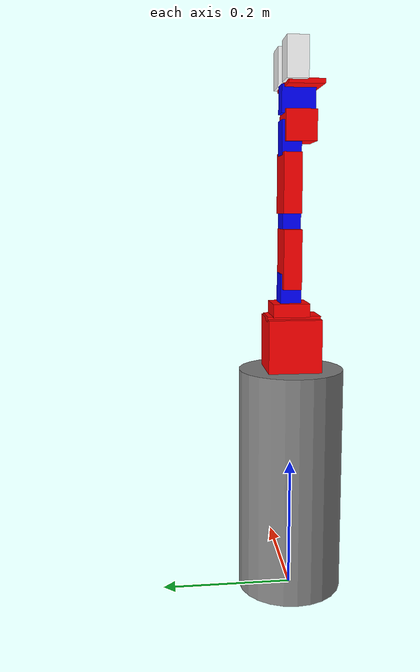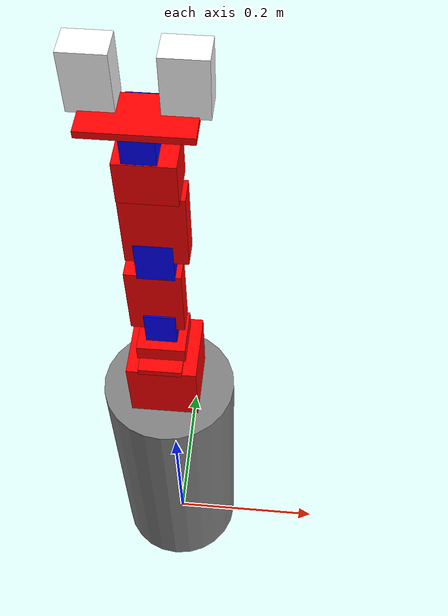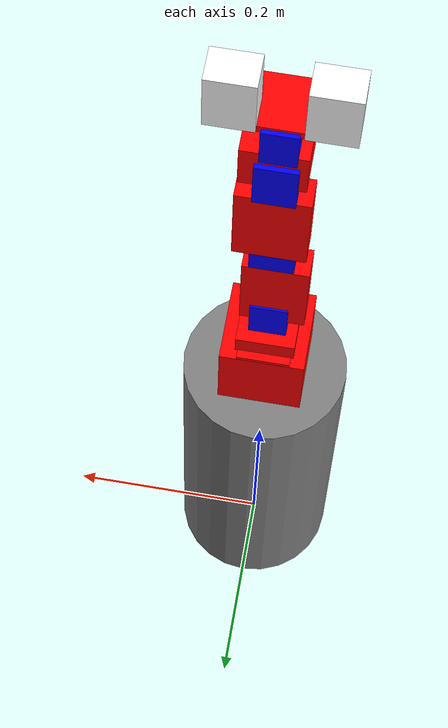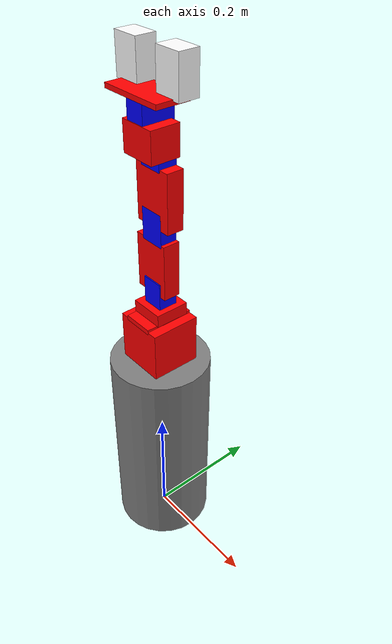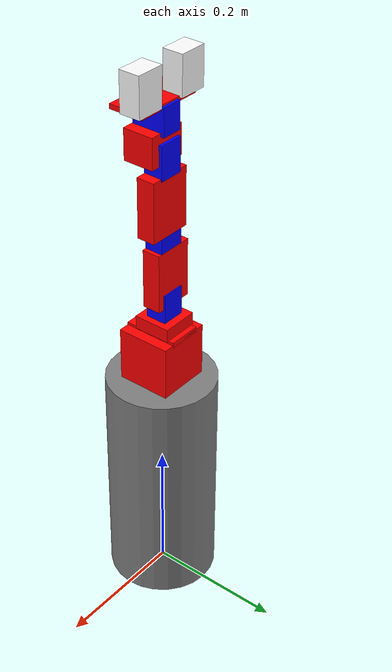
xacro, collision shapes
<?xml version="1.0"?>
<robot xmlns:xacro="http://www.ros.org/wiki/xacro" name="armando">

  <!-- Argomenti che verranno passati dal launch file -->
  <xacro:arg name="namespace" default=""/>
  <xacro:arg name="yaml_file" default=""/>

  <!-- Proprietà locali -->
  <xacro:property name="prefix" value="arm_"/>
  <xacro:property name="namespace_value" value="$(arg namespace)"/>
  <xacro:property name="yaml_path" value="$(arg yaml_file)"/>

  <!-- ... resto del file rimane uguale ... -->

  <!-- ... resto del tuo codice ... -->
  <material name="red">
    <color rgba="1 0 0 1"/>
  </material>

  <material name="blue">
    <color rgba="0 0 1 1"/>
  </material>

  <material name="green">
    <color rgba="0 1 0 1"/>
  </material>

  <!-- MATERIALS -->
  <material name="red_base"><color rgba="0.8 0.0 0.0 1.0"/></material>
  <material name="black"><color rgba="0.15 0.15 0.15 1.0"/></material>
  <material name="grey"><color rgba="0.5 0.5 0.5 1.0"/></material>

  <!-- PROPERTIES -->
  <xacro:property name="M_PI_2" value="1.570796327" />

  <xacro:property name="base_length" value="0.35" />
  <xacro:property name="base_width" value="0.25" />
  <xacro:property name="base_height" value="0.08" />
  <xacro:property name="base_mass" value="5.0" />

  <xacro:property name="wheel_radius" value="0.03" />
  <xacro:property name="wheel_width" value="0.025" />
  <xacro:property name="wheel_mass" value="0.3" />
  <xacro:property name="wheel_separation" value="0.24" />

  <xacro:property name="caster_radius" value="0.015" />
  <xacro:property name="caster_mass" value="0.05" />

  <xacro:property name="ground_clearance" value="0.005" />
  <xacro:property name="wheel_mount_z" value="${-base_height/2}" />
  <xacro:property name="base_elevation" value="${wheel_radius - wheel_mount_z + ground_clearance}" />

  <link name="${prefix}base_link">
    <visual>
      <geometry>
        <mesh filename="file://$(find escape_room)/meshes/armando/base_link.stl" scale="0.001 0.001 0.001"/>
      </geometry>
      <origin rpy="0 0 0" xyz="0 0 0.03"/>
      <material name="red"/>
    </visual>
    <collision>
      <geometry>
        <box size = "0.08 0.08 0.1"/>
      </geometry>
      <origin rpy="0 0 0" xyz="0 0 0.03"/>
    </collision>
    <inertial>
      <mass value="0.5"/>
      <inertia ixx="0.001" ixy="0.0" ixz="0.0" iyy="0.001" iyz="0.0" izz="0.001"/>
    </inertial>
  </link>

  <joint name="${prefix}base_1_2" type="fixed">
    <parent link="${prefix}base_link"/>
    <child link="${prefix}base_turn"/>
    <origin xyz="-0.0011 -0.011 0.08"/>
  </joint>

  <link name="${prefix}base_turn">
    <visual>
      <geometry>
        <mesh filename="file://$(find escape_room)/meshes/armando/base_turn.stl" scale="0.001 0.001 0.001"/>
      </geometry>
      <origin rpy="0 0 0" xyz="0 0 0"/>
      <material name="red"/>
    </visual>
    <collision>
      <geometry>
          <box size = "0.05 0.08 0.008"/>
        </geometry>
      <origin rpy="0 0 0" xyz="0 +0.011 0"/>
    </collision>
    <inertial>
      <mass value="0.1"/>
      <inertia ixx="0.0001" ixy="0.0" ixz="0.0" iyy="0.0001" iyz="0.0" izz="0.0001"/>
    </inertial>
  </link>

  <joint name="${prefix}j0" type="revolute">
    <parent link="${prefix}base_turn"/>
    <child link="${prefix}base_turn_rot"/>
    <origin xyz="-0.0 0.0155 0.013" rpy = "0 0 -1.57"/>
    <axis xyz="0 0 1" />
    <limit effort="300" velocity="1.0" lower="-2.57" upper="2.57"/>
    <dynamics damping="0.5" friction="0.1"/>
  </joint>

  <link name="${prefix}base_turn_rot">
    <visual>
      <geometry>
        <mesh filename="file://$(find escape_room)/meshes/armando/base_turn_table_rot.stl" scale="0.001 0.001 0.001"/>
      </geometry>
      <material name="red"/>
    </visual>
    <collision>
      <geometry>
          <box size = "0.055 0.055 0.02"/>
        </geometry>
      <origin rpy="0 0 0" xyz="0 0 0"/>
    </collision>

    <inertial>
      <mass value="0.1"/>
      <inertia ixx="0.001" ixy="0.0" ixz="0.0" iyy="0.001" iyz="0.0" izz="0.001"/>
    </inertial>
  </link>

  <joint name="${prefix}base_turn_rot_dyn2" type="fixed">
    <parent link="${prefix}base_turn_rot"/>
    <child link="${prefix}dyn2"/>
    <origin xyz="0 0 0.0385" rpy="0 1.57 1.57 "/>
  </joint>

  <link name="${prefix}dyn2">
    <visual>
      <geometry>
        <mesh filename="file://$(find escape_room)/meshes/armando/dyn.stl" scale="0.01 0.01 0.01"/>
      </geometry>
      <material name="blue"/>
      <origin rpy="0 0 0" xyz="0 0 0"/>
    </visual>
    <collision>
      <geometry>
          <box size = "0.05 0.031 0.035"/>
        </geometry>
      <origin rpy="0 0 0" xyz="0.01 0 0"/>
    </collision>
     <inertial>
      <mass value="0.1"/>
      <inertia ixx="6.90013881e-05" ixy="0.0" ixz="0.0" iyy="1.24554875e-04" iyz="0.0" izz="1.04295793e-04"/>
    </inertial>
  </link>

  <joint name="${prefix}j1" type="revolute">
    <parent link="${prefix}dyn2"/>
    <child link="${prefix}dyn2_r"/>
    <origin xyz="0 0 0.0" rpy="0 0 0"/>
    <axis xyz="0 0 1" />
    <limit effort="300" velocity="1.0" lower="-3.14" upper="3.14"/>
    <dynamics damping="0.5" friction="0.1"/>
  </joint>

  <link name="${prefix}dyn2_r">

  </link>

  <joint name="${prefix}dyn2_f4" type="fixed">
    <parent link="${prefix}dyn2_r"/>
    <child link="${prefix}f4"/>
    <origin xyz="-0.047 0.0 -0.003" rpy="0 1.57 1.57"/>
  </joint>

  <link name="${prefix}f4">
    <visual>
      <geometry>
        <mesh filename="file://$(find escape_room)/meshes/armando/f4_n_f3.stl" scale="0.001 0.001 0.001"/>
      </geometry>
      <origin rpy="0 0 0" xyz="0 0 0"/>
      <material name="red"/>
    </visual>
    <collision>
      <geometry>
          <box size = "0.06 0.088 0.027"/>
        </geometry>
      <origin rpy="0 0 0" xyz="0 -0.01 0"/>
    </collision>
     <inertial>
      <mass value="0.1"/>
      <inertia ixx="6.90013881e-05" ixy="0.0" ixz="0.0" iyy="1.24554875e-04" iyz="0.0" izz="1.04295793e-04"/>
    </inertial>
  </link>

  <joint name="${prefix}d4_dyn3" type="fixed">
    <parent link="${prefix}f4"/>
    <child link="${prefix}dyn3"/>
    <origin xyz="-0.004 0.0645 0 " rpy="-1.57 3.14 1.57"/>
  </joint>

  <link name="${prefix}dyn3">
    <visual>
      <geometry>
        <mesh filename="file://$(find escape_room)/meshes/armando/dyn.stl" scale="0.01 0.01 0.01"/>
      </geometry>
      <material name="blue"/>
      <origin rpy="0 0 0" xyz="0 0 0"/>
    </visual>
    <collision>
      <geometry>
          <box size = "0.05 0.027 0.04"/>
        </geometry>
      <origin rpy="0 0 0" xyz="0.01 0 0"/>
    </collision>
     <inertial>
      <mass value="0.1"/>
      <inertia ixx="6.90013881e-05" ixy="0.0" ixz="0.0" iyy="1.24554875e-04" iyz="0.0" izz="1.04295793e-04"/>
    </inertial>
  </link>

  <joint name="${prefix}j2" type="revolute">
    <parent link="${prefix}dyn3"/>
    <child link="${prefix}dyn3_r"/>
    <origin xyz="0 0 0.0" rpy="0 0 0"/>
    <axis xyz="0 0 1" />
    <limit effort="300" velocity="1.0" lower="-3.14" upper="3.14"/>
    <dynamics damping="0.5" friction="0.1"/>
  </joint>

 <link name="${prefix}dyn3_r">

  </link>

  <joint name="${prefix}dyn3_f5" type="fixed">
    <parent link="${prefix}dyn3_r"/>
    <child link="${prefix}f5"/>
    <origin xyz="-0.046 -0.0 -0.002" rpy="1.57 1.57 3.1415 "/>
  </joint>

  <link name="${prefix}f5">
    <visual>
      <geometry>
        <mesh filename="file://$(find escape_room)/meshes/armando/f4_n_f3.stl" scale="0.001 0.001 0.001"/>
      </geometry>
      <origin rpy="0 0 0" xyz="0 0 0"/>
      <material name="red"/>
    </visual>
    <collision>
      <geometry>
          <box size = "0.065 0.088 0.027"/>
        </geometry>
      <origin rpy="0 0 0" xyz="-0.005 -0.01 0"/>
    </collision>

    <inertial>
      <mass value="0.1"/>
  <inertia ixx="0.001" ixy="0.0" ixz="0.0" iyy="0.001" iyz="0.0" izz="0.001"/>    </inertial>
  </link>

  <joint name="${prefix}f5_dyn4" type="fixed">
    <parent link="${prefix}f5"/>
    <child link="${prefix}dyn4"/>
    <origin xyz="-0.004 0.065 -0.0" rpy="-1.57 3.1415 1.57 "/>
  </joint>

  <link name="${prefix}dyn4">
    <visual>
      <geometry>
        <mesh filename="file://$(find escape_room)/meshes/armando/dyn.stl" scale="0.01 0.01 0.01"/>
      </geometry>
      <material name="blue"/>
      <origin rpy="0 0 0" xyz="0 0 0"/>
    </visual>
    <collision>
      <geometry>
          <box size = "0.05 0.029 0.037"/>
        </geometry>
      <origin rpy="0 0 0" xyz="0.01 0 0"/>
    </collision>

    <inertial>
      <mass value="0.1"/>
      <inertia ixx="6.90013881e-05" ixy="0.0" ixz="0.0" iyy="1.24554875e-04" iyz="0.0" izz="1.04295793e-04"/>
    </inertial>
  </link>

  <joint name="${prefix}j3" type="revolute">
    <parent link="${prefix}dyn4"/>
    <child link="${prefix}dyn4_r"/>
    <origin xyz="0 0 0.0" rpy="0 0 0"/>
    <axis xyz="0 0 1" />
    <limit effort="300" velocity="1.0" lower="-3.14" upper="3.14"/>
    <dynamics damping="0.5" friction="0.1"/>
  </joint>

  <link name="${prefix}dyn4_r">

  </link>

  <joint name="${prefix}f5_wrist" type="fixed">
    <parent link="${prefix}dyn4_r"/>
    <child link="${prefix}wrist"/>
    <origin xyz="-0.017 -0.013 0.003" rpy="1.57 1.57 -1.57"/>
  </joint>

  <link name="${prefix}wrist">
    <visual>
      <geometry>
        <mesh filename="file://$(find escape_room)/meshes/armando/wrist.stl" scale="0.001 0.001 0.001"/>
      </geometry>
      <origin rpy="0 0 0" xyz="0 0 0"/>
      <material name="red"/>
    </visual>
    <collision>
      <geometry>
        <box size = "0.057 0.046 0.045"/>
      </geometry>
      <origin rpy="0 0 0" xyz="0 0 -0.01"/>
    </collision>

     <inertial>
      <mass value="0.1"/>
      <inertia ixx="6.90013881e-05" ixy="0.0" ixz="0.0" iyy="1.24554875e-04" iyz="0.0" izz="1.04295793e-04"/>
    </inertial>
  </link>

  <joint name="${prefix}wrist_dyn5" type="fixed">
    <parent link="${prefix}wrist"/>
    <child link="${prefix}dyn5"/>
    <origin xyz="0.0038 -0.013 0.0275" rpy="0 0 1.57"/>
  </joint>

    <link name="${prefix}dyn5">
    <visual>
      <geometry>
        <mesh filename="file://$(find escape_room)/meshes/armando/dyn.stl" scale="0.01 0.01 0.01"/>
      </geometry>
      <material name="blue"/>
      <origin rpy="0 0 0" xyz="0 0 0"/>
    </visual>
    <collision>
      <geometry>
          <box size = "0.05 0.031 0.04"/>
        </geometry>
      <origin rpy="0 0 0" xyz="0.01 0 0"/>
    </collision>

    <inertial>
      <mass value="0.1"/>
      <inertia ixx="6.90013881e-05" ixy="0.0" ixz="0.0" iyy="1.24554875e-04" iyz="0.0" izz="1.04295793e-04"/>
    </inertial>
  </link>

  <joint name="${prefix}dyn5_dyn5_r" type="fixed">
    <parent link="${prefix}dyn5"/>
    <child link="${prefix}dyn5_r"/>
    <origin xyz="0 0 0.0" rpy="0 0 0"/>
    <axis xyz="0 0 1" />
    <limit effort="300" velocity="0.1" lower="-3.14" upper="3.14"/>
  </joint>

  <link name="${prefix}dyn5_r">

  </link>

  <joint name="${prefix}wrist_rotate_dyn5" type="fixed">
    <parent link="${prefix}dyn5_r"/>
    <child link="${prefix}crawer_base"/>
    <origin xyz="0.015 0 0.019" rpy="0 0 1.57"/>
  </joint>

  <link name="${prefix}crawer_base">
    <visual>
      <geometry>
        <mesh filename="file://$(find escape_room)/meshes/armando/the_crawer_base.stl" scale="0.001 0.001 0.001"/>
      </geometry>
      <origin rpy="0 0 0" xyz="0 0 0"/>
      <material name="red"/>
    </visual>
    <collision>
      <geometry>
          <box size = "0.102 0.052 0.007"/>
        </geometry>
      <origin rpy="0 0 0" xyz="0 0 0"/>
    </collision>

    <inertial>
      <mass value="0.1"/>
      <inertia ixx="6.90013881e-05" ixy="0.0" ixz="0.0" iyy="1.24554875e-04" iyz="0.0" izz="1.04295793e-04"/>
    </inertial>
  </link>

  <!-- SOSTITUISCI QUESTI DUE JOINT -->

  <!-- Joint prismatico per la pinza sinistra -->
  <joint name="${prefix}gripper_left_joint" type="prismatic">
    <parent link="${prefix}crawer_base"/>
    <child link="${prefix}crawer_left"/>
    <origin xyz="-0.03 0.015 0.01" rpy="0 -1.57 0"/>
    <axis xyz="0 0 1"/>  <!-- Si muove lungo l'asse X -->
    <limit effort="20" velocity="0.05" lower="0.0" upper="0.03"/>  <!-- 3cm di apertura -->
  </joint>

  <link name="${prefix}crawer_left">
    <visual>
      <geometry>
        <mesh filename="file://$(find escape_room)/meshes/armando/the_crawer.stl" scale="0.001 0.001 0.001"/>
      </geometry>
      <origin rpy="0 0 0" xyz="0 0 0"/>
      <material name="white">
        <color rgba="1 1 1 1"/>
      </material>
    </visual>
    <collision>
      <geometry>
          <box size = "0.057 0.031 0.042"/>
        </geometry>
      <origin rpy="0 0 0" xyz="0.02 0 0.01"/>
    </collision>

    <inertial>
      <mass value="0.1"/>
      <inertia ixx="6.90013881e-05" ixy="0.0" ixz="0.0" iyy="1.24554875e-04" iyz="0.0" izz="1.04295793e-04"/>
    </inertial>
  </link>

  <!-- Joint prismatico per la pinza destra -->
  <joint name="${prefix}gripper_right_joint" type="prismatic">
    <parent link="${prefix}crawer_base"/>
    <child link="${prefix}crawer_right"/>
    <origin xyz="0.03 0.015 0.01" rpy="3.1415 -1.57 0"/>
    <axis xyz="0 0 1"/>  <!-- Si muove in direzione opposta -->
    <limit effort="20" velocity="0.05" lower="0.0" upper="0.03"/>  <!-- 3cm di apertura -->
  </joint>

  <link name="${prefix}crawer_right">
    <visual>
      <geometry>
        <mesh filename="file://$(find escape_room)/meshes/armando/the_crawer.stl" scale="0.001 0.001 0.001"/>
      </geometry>
      <origin rpy="0 0 0" xyz="0 0 0"/>
      <material name="white">
        <color rgba="1 1 1 1"/>
      </material>
    </visual>
    <collision>
      <geometry>
          <box size = "0.057 0.031 0.042"/>
        </geometry>
      <origin rpy="0 0 0" xyz="0.02 0 0.01"/>
    </collision>

    <inertial>
      <mass value="0.1"/>
      <inertia ixx="6.90013881e-05" ixy="0.0" ixz="0.0" iyy="1.24554875e-04" iyz="0.0" izz="1.04295793e-04"/>
    </inertial>
  </link>

  <joint name="${prefix}camera_joint" type="fixed">
    <parent link="${prefix}base_link"/>
    <child link="${prefix}camera_link"/>
    <origin xyz="0.0 0 0.015" rpy="0.0 0 -1.57"/>
  </joint>

  <link name="${prefix}camera_link">
      <visual>
          <geometry>
              <box size="0.010 0.03 0.03"/>
          </geometry>
          <origin xyz="0 0 0" rpy="0 0 0"/>
          <material name="green"/>
      </visual>
  </link>

  <!-- Link world necessario per il joint fisso -->
  <link name="world"/>

  <!-- Piedistallo cilindrico per sollevare il braccio -->
  <xacro:property name="pedestal_height" value="0.35"/>
  <xacro:property name="pedestal_radius" value="0.08"/>

  <link name="${prefix}pedestal">
    <visual>
      <geometry>
        <cylinder radius="${pedestal_radius}" length="${pedestal_height}"/>
      </geometry>
      <origin xyz="0 0 ${pedestal_height/2}" rpy="0 0 0"/>
      <material name="grey"/>
    </visual>
    <collision>
      <geometry>
        <cylinder radius="${pedestal_radius}" length="${pedestal_height}"/>
      </geometry>
      <origin xyz="0 0 ${pedestal_height/2}" rpy="0 0 0"/>
    </collision>
    <inertial>
      <mass value="1.0"/>
      <inertia ixx="0.001" ixy="0.0" ixz="0.0" iyy="0.001" iyz="0.0" izz="0.001"/>
    </inertial>
  </link>

  <joint name="world_to_pedestal" type="fixed">
    <parent link="world"/>
    <child link="${prefix}pedestal"/>
    <origin xyz="0 0 0" rpy="0 0 0"/>
  </joint>

  <joint name="armando_fixed_mount" type="fixed">
    <parent link="${prefix}pedestal"/>
    <child link="${prefix}base_link"/>
    <origin xyz="0 0 ${pedestal_height}" rpy="0 0 0"/>
  </joint>

  <gazebo reference="${prefix}pedestal">
    <material>Gazebo/Grey</material>
  </gazebo>

  <!-- ========== GAZEBO PLUGINS ========== -->

  <gazebo>
    <plugin filename="gz_ros2_control-system" name="gz_ros2_control::GazeboSimROS2ControlPlugin">
      <parameters>$(arg yaml_file)</parameters>
      <ros>
      <namespace>$(arg namespace)</namespace>
      </ros>
      <control_period>0.001</control_period>  <!-- 1000 Hz per controllo più reattivo -->

      <!-- Guadagni PID per ogni joint -->
      <position_proportional_gain>100.0</position_proportional_gain>
    </plugin>
  </gazebo>

  <!-- Colori e proprietà fisiche per Gazebo -->
  <gazebo reference="${prefix}base_link">
    <material>Gazebo/Red</material>
    <mu1>0.2</mu1>
    <mu2>0.2</mu2>
  </gazebo>

  <gazebo reference="${prefix}base_turn">
    <material>Gazebo/Red</material>
  </gazebo>

  <gazebo reference="${prefix}base_turn_rot">
    <material>Gazebo/Red</material>
  </gazebo>

  <gazebo reference="${prefix}dyn2">
    <material>Gazebo/Blue</material>
  </gazebo>

  <gazebo reference="${prefix}dyn3">
    <material>Gazebo/Blue</material>
  </gazebo>

  <gazebo reference="${prefix}dyn4">
    <material>Gazebo/Blue</material>
  </gazebo>

  <gazebo reference="${prefix}dyn5">
    <material>Gazebo/Blue</material>
  </gazebo>

  <gazebo reference="${prefix}f4">
    <material>Gazebo/Red</material>
  </gazebo>

  <gazebo reference="${prefix}f5">
    <material>Gazebo/Red</material>
  </gazebo>

  <gazebo reference="${prefix}wrist">
    <material>Gazebo/Red</material>
  </gazebo>

  <gazebo reference="${prefix}crawer_base">
    <material>Gazebo/Red</material>
  </gazebo>

  <gazebo reference="${prefix}crawer_left">
    <material>Gazebo/White</material>
  </gazebo>

  <gazebo reference="${prefix}crawer_right">
    <material>Gazebo/White</material>
  </gazebo>

  <gazebo reference="${prefix}crawer_left">
    <material>Gazebo/White</material>
    <mu1>1.0</mu1>  <!-- ✅ Attrito aumentato -->
    <mu2>1.0</mu2>
    <kp>1000000.0</kp>  <!-- ✅ Rigidità contatto -->
    <kd>1.0</kd>
  </gazebo>

  <gazebo reference="${prefix}crawer_right">
    <material>Gazebo/White</material>
    <mu1>1.0</mu1>
    <mu2>1.0</mu2>
    <kp>1000000.0</kp>
    <kd>1.0</kd>
  </gazebo>

  <!-- Configurazione del sensore camera in Gazebo -->
  <gazebo reference="${prefix}camera_link">
    <sensor name="camera" type="camera">
      <camera>
        <horizontal_fov>1.047</horizontal_fov>
        <image>
          <width>640</width>
          <height>480</height>
          <format>R8G8B8</format>
        </image>
        <clip>
          <near>0.1</near>
          <far>100</far>
        </clip>
      </camera>
      <always_on>1</always_on>
      <update_rate>30</update_rate>
      <visualize>true</visualize>
      <topic>$(arg namespace)/camera</topic>
    </sensor>
  </gazebo>

  <!-- ros2_control hardware interface -->
  <ros2_control name="GazeboSimSystem" type="system">
    <hardware>
      <plugin>gz_ros2_control/GazeboSimSystem</plugin>
    </hardware>

    <joint name="${prefix}j0">
      <command_interface name="position">
        <param name="min">-2.57</param>
        <param name="max">2.57</param>
      </command_interface>
      <state_interface name="position"/>
      <state_interface name="velocity"/>
    </joint>

    <joint name="${prefix}j1">
      <command_interface name="position">
        <param name="min">-3.14</param>
        <param name="max">3.14</param>
      </command_interface>
      <state_interface name="position"/>
      <state_interface name="velocity"/>
    </joint>

    <joint name="${prefix}j2">
      <command_interface name="position">
        <param name="min">-3.14</param>
        <param name="max">3.14</param>
      </command_interface>
      <state_interface name="position"/>
      <state_interface name="velocity"/>
    </joint>

    <joint name="${prefix}j3">
      <command_interface name="position">
        <param name="min">-3.14</param>
        <param name="max">3.14</param>
      </command_interface>
      <state_interface name="position"/>
      <state_interface name="velocity"/>
    </joint>

    <!-- Nel blocco ros2_control, rimuovi il mimic dal gripper_right_joint -->
    <joint name="${prefix}gripper_left_joint">
      <command_interface name="position">
        <param name="min">0.0</param>
        <param name="max">0.03</param>
      </command_interface>
      <state_interface name="position"/>
      <state_interface name="velocity"/>
    </joint>

    <joint name="${prefix}gripper_right_joint">
      <command_interface name="position">
        <param name="min">0.0</param>
        <param name="max">0.03</param>
      </command_interface>
      <state_interface name="position"/>
      <state_interface name="velocity"/>
    </joint>

  </ros2_control>

</robot>
